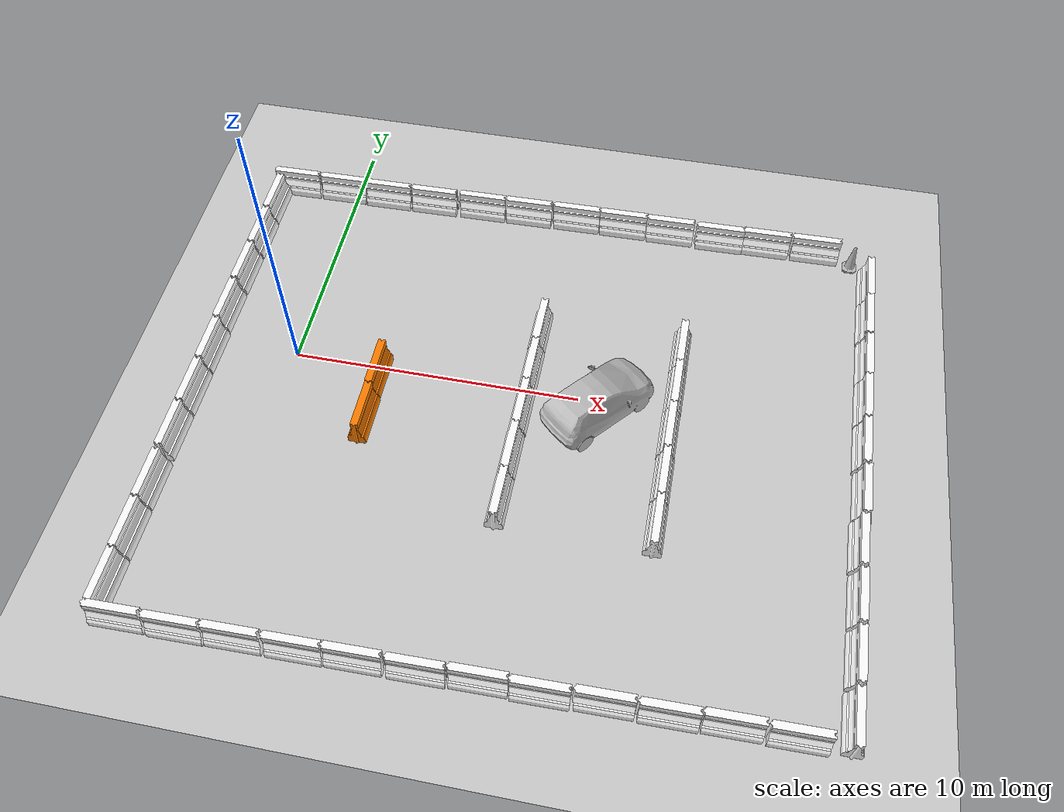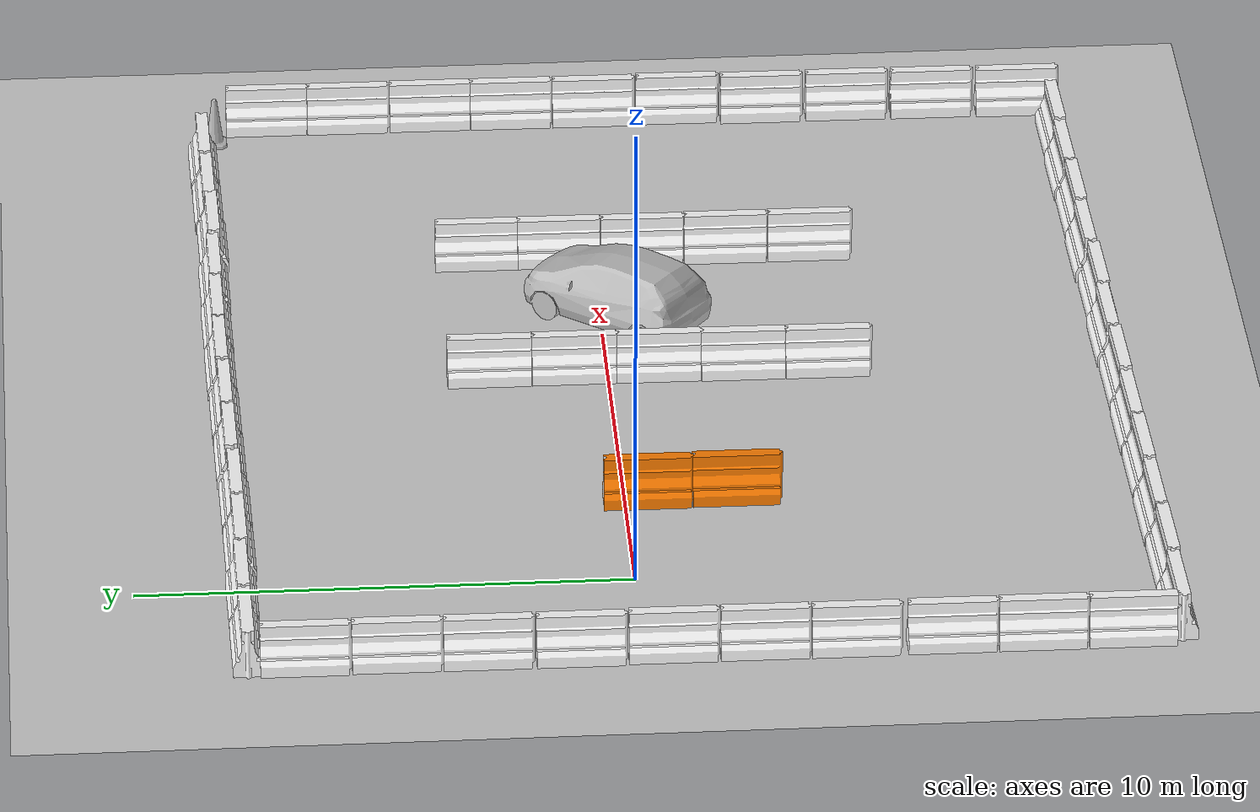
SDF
<sdf version="1.7">
 <world name="default">
  <light name="sun" type="directional">
   <pose>0 0 10 0 -0 0</pose>
   <diffuse>0.8 0.8 0.8 1</diffuse>
   <specular>0.2 0.2 0.2 1</specular>
   <attenuation>
    <range>1000</range>
    <constant>0.9</constant>
    <linear>0.01</linear>
    <quadratic>0.001</quadratic>
   </attenuation>
   <direction>-0.5 0.1 -0.9</direction>
   <spot><inner_angle>0</inner_angle><outer_angle>0</outer_angle><falloff>0</falloff></spot>
  </light>
  <model name="ground_plane">
   <static>1</static>
   <link name="link">
    <collision name="collision">
     <geometry><plane><normal>0 0 1</normal><size>100 100</size></plane></geometry>
     <surface>
      <contact><collide_bitmask>65535</collide_bitmask></contact>
      <friction><ode><mu>100</mu><mu2>50</mu2></ode></friction>
     </surface>
    </collision>
    <visual name="visual">
     <cast_shadows>0</cast_shadows>
     <geometry><plane><normal>0 0 1</normal><size>100 100</size></plane></geometry>
     <material>
      <script><uri>file://media/materials/scripts/gazebo.material</uri><name>Gazebo/Grey</name></script>
     </material>
    </visual>
   </link>
  </model>
  <gravity>0 0 -9.8</gravity>
  <magnetic_field>6e-06 2.3e-05 -4.2e-05</magnetic_field>
  <atmosphere type="adiabatic"/>
  <physics type="ode">
   <max_step_size>0.001</max_step_size>
   <real_time_factor>1</real_time_factor>
   <real_time_update_rate>1000</real_time_update_rate>
  </physics>
  <scene><ambient>0.4 0.4 0.4 1</ambient><background>0.7 0.7 0.7 1</background><shadows>1</shadows></scene>
  <spherical_coordinates>
   <surface_model>EARTH_WGS84</surface_model>
   <latitude_deg>0</latitude_deg>
   <longitude_deg>0</longitude_deg>
   <elevation>0</elevation>
   <heading_deg>0</heading_deg>
  </spherical_coordinates>
  <model name="drc_practice_white_jersey_barrier">
   <static>1</static>
   <link name="link">
    <visual name="visual">
     <geometry>
      <mesh><uri>model://drc_practice_white_jersey_barrier/meshes/jersey_barrier.dae</uri></mesh>
     </geometry>
    </visual>
    <collision name="collision">
     <geometry>
      <mesh><uri>model://drc_practice_white_jersey_barrier/meshes/jersey_barrier.dae</uri></mesh>
     </geometry>
    </collision>
   </link>
   <pose>-2.96918 3.11788 0 0 -0 0</pose>
  </model>
  <model name="drc_practice_white_jersey_barrier_clone">
   <static>1</static>
   <link name="link">
    <visual name="visual">
     <geometry>
      <mesh><uri>model://drc_practice_white_jersey_barrier/meshes/jersey_barrier.dae</uri></mesh>
     </geometry>
    </visual>
    <collision name="collision">
     <geometry>
      <mesh><uri>model://drc_practice_white_jersey_barrier/meshes/jersey_barrier.dae</uri></mesh>
     </geometry>
    </collision>
   </link>
   <pose>-2.97786 1.28953 0 0 -0 0</pose>
  </model>
  <model name="drc_practice_white_jersey_barrier_clone_0">
   <static>1</static>
   <link name="link">
    <visual name="visual">
     <geometry>
      <mesh><uri>model://drc_practice_white_jersey_barrier/meshes/jersey_barrier.dae</uri></mesh>
     </geometry>
    </visual>
    <collision name="collision">
     <geometry>
      <mesh><uri>model://drc_practice_white_jersey_barrier/meshes/jersey_barrier.dae</uri></mesh>
     </geometry>
    </collision>
   </link>
   <pose>-2.94831 -0.526407 0 0 -0 0</pose>
  </model>
  <model name="drc_practice_white_jersey_barrier_clone_1">
   <static>1</static>
   <link name="link">
    <visual name="visual">
     <geometry>
      <mesh><uri>model://drc_practice_white_jersey_barrier/meshes/jersey_barrier.dae</uri></mesh>
     </geometry>
    </visual>
    <collision name="collision">
     <geometry>
      <mesh><uri>model://drc_practice_white_jersey_barrier/meshes/jersey_barrier.dae</uri></mesh>
     </geometry>
    </collision>
   </link>
   <pose>-2.948 -2.33338 0 0 -0 0</pose>
  </model>
  <model name="drc_practice_white_jersey_barrier_clone_2">
   <static>1</static>
   <link name="link">
    <visual name="visual">
     <geometry>
      <mesh><uri>model://drc_practice_white_jersey_barrier/meshes/jersey_barrier.dae</uri></mesh>
     </geometry>
    </visual>
    <collision name="collision">
     <geometry>
      <mesh><uri>model://drc_practice_white_jersey_barrier/meshes/jersey_barrier.dae</uri></mesh>
     </geometry>
    </collision>
   </link>
   <pose>-2.95731 -4.12895 0 0 -0 0</pose>
  </model>
  <model name="drc_practice_white_jersey_barrier_clone_3">
   <static>1</static>
   <link name="link">
    <visual name="visual">
     <geometry>
      <mesh><uri>model://drc_practice_white_jersey_barrier/meshes/jersey_barrier.dae</uri></mesh>
     </geometry>
    </visual>
    <collision name="collision">
     <geometry>
      <mesh><uri>model://drc_practice_white_jersey_barrier/meshes/jersey_barrier.dae</uri></mesh>
     </geometry>
    </collision>
   </link>
   <pose>-2.94533 -6.03387 0 0 -0 0</pose>
  </model>
  <model name="drc_practice_white_jersey_barrier_clone_4">
   <static>1</static>
   <link name="link">
    <visual name="visual">
     <geometry>
      <mesh><uri>model://drc_practice_white_jersey_barrier/meshes/jersey_barrier.dae</uri></mesh>
     </geometry>
    </visual>
    <collision name="collision">
     <geometry>
      <mesh><uri>model://drc_practice_white_jersey_barrier/meshes/jersey_barrier.dae</uri></mesh>
     </geometry>
    </collision>
   </link>
   <pose>-2.94521 -7.82538 0 0 -0 0</pose>
  </model>
  <model name="drc_practice_white_jersey_barrier_clone_5">
   <static>1</static>
   <link name="link">
    <visual name="visual">
     <geometry>
      <mesh><uri>model://drc_practice_white_jersey_barrier/meshes/jersey_barrier.dae</uri></mesh>
     </geometry>
    </visual>
    <collision name="collision">
     <geometry>
      <mesh><uri>model://drc_practice_white_jersey_barrier/meshes/jersey_barrier.dae</uri></mesh>
     </geometry>
    </collision>
   </link>
   <pose>-2.94453 -9.61525 0 0 -0 0</pose>
  </model>
  <model name="drc_practice_white_jersey_barrier_clone_6">
   <static>1</static>
   <link name="link">
    <visual name="visual">
     <geometry>
      <mesh><uri>model://drc_practice_white_jersey_barrier/meshes/jersey_barrier.dae</uri></mesh>
     </geometry>
    </visual>
    <collision name="collision">
     <geometry>
      <mesh><uri>model://drc_practice_white_jersey_barrier/meshes/jersey_barrier.dae</uri></mesh>
     </geometry>
    </collision>
   </link>
   <pose>-2.95988 4.91477 0 0 -0 0</pose>
  </model>
  <model name="drc_practice_white_jersey_barrier_clone_7">
   <static>1</static>
   <link name="link">
    <visual name="visual">
     <geometry>
      <mesh><uri>model://drc_practice_white_jersey_barrier/meshes/jersey_barrier.dae</uri></mesh>
     </geometry>
    </visual>
    <collision name="collision">
     <geometry>
      <mesh><uri>model://drc_practice_white_jersey_barrier/meshes/jersey_barrier.dae</uri></mesh>
     </geometry>
    </collision>
   </link>
   <pose>-2.97922 6.71667 0 0 -0 0</pose>
  </model>
  <model name="drc_practice_white_jersey_barrier_clone_8">
   <static>1</static>
   <link name="link">
    <visual name="visual">
     <geometry>
      <mesh><uri>model://drc_practice_white_jersey_barrier/meshes/jersey_barrier.dae</uri></mesh>
     </geometry>
    </visual>
    <collision name="collision">
     <geometry>
      <mesh><uri>model://drc_practice_white_jersey_barrier/meshes/jersey_barrier.dae</uri></mesh>
     </geometry>
    </collision>
   </link>
   <pose>-2.35169 7.83258 0 0 0 -1.5496</pose>
  </model>
  <model name="drc_practice_white_jersey_barrier_clone_8_clone">
   <static>1</static>
   <link name="link">
    <visual name="visual">
     <geometry>
      <mesh><uri>model://drc_practice_white_jersey_barrier/meshes/jersey_barrier.dae</uri></mesh>
     </geometry>
    </visual>
    <collision name="collision">
     <geometry>
      <mesh><uri>model://drc_practice_white_jersey_barrier/meshes/jersey_barrier.dae</uri></mesh>
     </geometry>
    </collision>
   </link>
   <pose>-0.523214 7.85907 0 0 0 -1.5496</pose>
  </model>
  <model name="drc_practice_white_jersey_barrier_clone_8_clone_0">
   <static>1</static>
   <link name="link">
    <visual name="visual">
     <geometry>
      <mesh><uri>model://drc_practice_white_jersey_barrier/meshes/jersey_barrier.dae</uri></mesh>
     </geometry>
    </visual>
    <collision name="collision">
     <geometry>
      <mesh><uri>model://drc_practice_white_jersey_barrier/meshes/jersey_barrier.dae</uri></mesh>
     </geometry>
    </collision>
   </link>
   <pose>1.27629 7.85268 0 0 0 -1.5496</pose>
  </model>
  <model name="drc_practice_white_jersey_barrier_clone_8_clone_1">
   <static>1</static>
   <link name="link">
    <visual name="visual">
     <geometry>
      <mesh><uri>model://drc_practice_white_jersey_barrier/meshes/jersey_barrier.dae</uri></mesh>
     </geometry>
    </visual>
    <collision name="collision">
     <geometry>
      <mesh><uri>model://drc_practice_white_jersey_barrier/meshes/jersey_barrier.dae</uri></mesh>
     </geometry>
    </collision>
   </link>
   <pose>3.0918 7.88223 0 0 0 -1.5496</pose>
  </model>
  <model name="drc_practice_white_jersey_barrier_clone_8_clone_2">
   <static>1</static>
   <link name="link">
    <visual name="visual">
     <geometry>
      <mesh><uri>model://drc_practice_white_jersey_barrier/meshes/jersey_barrier.dae</uri></mesh>
     </geometry>
    </visual>
    <collision name="collision">
     <geometry>
      <mesh><uri>model://drc_practice_white_jersey_barrier/meshes/jersey_barrier.dae</uri></mesh>
     </geometry>
    </collision>
   </link>
   <pose>4.9922 7.93527 0 0 0 -1.5496</pose>
  </model>
  <model name="drc_practice_white_jersey_barrier_clone_8_clone_3">
   <static>1</static>
   <link name="link">
    <visual name="visual">
     <geometry>
      <mesh><uri>model://drc_practice_white_jersey_barrier/meshes/jersey_barrier.dae</uri></mesh>
     </geometry>
    </visual>
    <collision name="collision">
     <geometry>
      <mesh><uri>model://drc_practice_white_jersey_barrier/meshes/jersey_barrier.dae</uri></mesh>
     </geometry>
    </collision>
   </link>
   <pose>6.78944 7.9733 0 0 0 -1.5496</pose>
  </model>
  <model name="drc_practice_white_jersey_barrier_clone_8_clone_4">
   <static>1</static>
   <link name="link">
    <visual name="visual">
     <geometry>
      <mesh><uri>model://drc_practice_white_jersey_barrier/meshes/jersey_barrier.dae</uri></mesh>
     </geometry>
    </visual>
    <collision name="collision">
     <geometry>
      <mesh><uri>model://drc_practice_white_jersey_barrier/meshes/jersey_barrier.dae</uri></mesh>
     </geometry>
    </collision>
   </link>
   <pose>8.63651 8.01898 0 0 0 -1.5496</pose>
  </model>
  <model name="drc_practice_white_jersey_barrier_clone_8_clone_5">
   <static>1</static>
   <link name="link">
    <visual name="visual">
     <geometry>
      <mesh><uri>model://drc_practice_white_jersey_barrier/meshes/jersey_barrier.dae</uri></mesh>
     </geometry>
    </visual>
    <collision name="collision">
     <geometry>
      <mesh><uri>model://drc_practice_white_jersey_barrier/meshes/jersey_barrier.dae</uri></mesh>
     </geometry>
    </collision>
   </link>
   <pose>10.4216 8.03822 0 0 0 -1.5496</pose>
  </model>
  <model name="drc_practice_white_jersey_barrier_clone_8_clone_6">
   <static>1</static>
   <link name="link">
    <visual name="visual">
     <geometry>
      <mesh><uri>model://drc_practice_white_jersey_barrier/meshes/jersey_barrier.dae</uri></mesh>
     </geometry>
    </visual>
    <collision name="collision">
     <geometry>
      <mesh><uri>model://drc_practice_white_jersey_barrier/meshes/jersey_barrier.dae</uri></mesh>
     </geometry>
    </collision>
   </link>
   <pose>12.2099 8.0405 0 0 0 -1.5496</pose>
  </model>
  <model name="drc_practice_white_jersey_barrier_clone_8_clone_7">
   <static>1</static>
   <link name="link">
    <visual name="visual">
     <geometry>
      <mesh><uri>model://drc_practice_white_jersey_barrier/meshes/jersey_barrier.dae</uri></mesh>
     </geometry>
    </visual>
    <collision name="collision">
     <geometry>
      <mesh><uri>model://drc_practice_white_jersey_barrier/meshes/jersey_barrier.dae</uri></mesh>
     </geometry>
    </collision>
   </link>
   <pose>14.0858 8.02334 0 0 0 -1.5496</pose>
  </model>
  <model name="drc_practice_white_jersey_barrier_clone_8_clone_8">
   <static>1</static>
   <link name="link">
    <visual name="visual">
     <geometry>
      <mesh><uri>model://drc_practice_white_jersey_barrier/meshes/jersey_barrier.dae</uri></mesh>
     </geometry>
    </visual>
    <collision name="collision">
     <geometry>
      <mesh><uri>model://drc_practice_white_jersey_barrier/meshes/jersey_barrier.dae</uri></mesh>
     </geometry>
    </collision>
   </link>
   <pose>15.7992 8.0809 0 0 0 -1.5496</pose>
  </model>
  <model name="drc_practice_white_jersey_barrier_clone_8_clone_9">
   <static>1</static>
   <link name="link">
    <visual name="visual">
     <geometry>
      <mesh><uri>model://drc_practice_white_jersey_barrier/meshes/jersey_barrier.dae</uri></mesh>
     </geometry>
    </visual>
    <collision name="collision">
     <geometry>
      <mesh><uri>model://drc_practice_white_jersey_barrier/meshes/jersey_barrier.dae</uri></mesh>
     </geometry>
    </collision>
   </link>
   <pose>17.6333 8.11788 0 0 0 -1.5496</pose>
  </model>
  <model name="drc_practice_white_jersey_barrier_clone_8_clone_10">
   <static>1</static>
   <link name="link">
    <visual name="visual">
     <geometry>
      <mesh><uri>model://drc_practice_white_jersey_barrier/meshes/jersey_barrier.dae</uri></mesh>
     </geometry>
    </visual>
    <collision name="collision">
     <geometry>
      <mesh><uri>model://drc_practice_white_jersey_barrier/meshes/jersey_barrier.dae</uri></mesh>
     </geometry>
    </collision>
   </link>
   <pose>-2.16392 -10.6018 0 0 0 -1.5496</pose>
  </model>
  <model name="drc_practice_white_jersey_barrier_clone_8_clone_11">
   <static>1</static>
   <link name="link">
    <visual name="visual">
     <geometry>
      <mesh><uri>model://drc_practice_white_jersey_barrier/meshes/jersey_barrier.dae</uri></mesh>
     </geometry>
    </visual>
    <collision name="collision">
     <geometry>
      <mesh><uri>model://drc_practice_white_jersey_barrier/meshes/jersey_barrier.dae</uri></mesh>
     </geometry>
    </collision>
   </link>
   <pose>-0.320988 -10.6043 0 0 0 -1.5496</pose>
  </model>
  <model name="drc_practice_white_jersey_barrier_clone_8_clone_12">
   <static>1</static>
   <link name="link">
    <visual name="visual">
     <geometry>
      <mesh><uri>model://drc_practice_white_jersey_barrier/meshes/jersey_barrier.dae</uri></mesh>
     </geometry>
    </visual>
    <collision name="collision">
     <geometry>
      <mesh><uri>model://drc_practice_white_jersey_barrier/meshes/jersey_barrier.dae</uri></mesh>
     </geometry>
    </collision>
   </link>
   <pose>1.48268 -10.5625 0 0 0 -1.5496</pose>
  </model>
  <model name="drc_practice_white_jersey_barrier_clone_8_clone_13">
   <static>1</static>
   <link name="link">
    <visual name="visual">
     <geometry>
      <mesh><uri>model://drc_practice_white_jersey_barrier/meshes/jersey_barrier.dae</uri></mesh>
     </geometry>
    </visual>
    <collision name="collision">
     <geometry>
      <mesh><uri>model://drc_practice_white_jersey_barrier/meshes/jersey_barrier.dae</uri></mesh>
     </geometry>
    </collision>
   </link>
   <pose>3.33164 -10.5456 0 0 0 -1.5496</pose>
  </model>
  <model name="drc_practice_white_jersey_barrier_clone_8_clone_14">
   <static>1</static>
   <link name="link">
    <visual name="visual">
     <geometry>
      <mesh><uri>model://drc_practice_white_jersey_barrier/meshes/jersey_barrier.dae</uri></mesh>
     </geometry>
    </visual>
    <collision name="collision">
     <geometry>
      <mesh><uri>model://drc_practice_white_jersey_barrier/meshes/jersey_barrier.dae</uri></mesh>
     </geometry>
    </collision>
   </link>
   <pose>5.12676 -10.5043 0 0 0 -1.5496</pose>
  </model>
  <model name="drc_practice_white_jersey_barrier_clone_8_clone_15">
   <static>1</static>
   <link name="link">
    <visual name="visual">
     <geometry>
      <mesh><uri>model://drc_practice_white_jersey_barrier/meshes/jersey_barrier.dae</uri></mesh>
     </geometry>
    </visual>
    <collision name="collision">
     <geometry>
      <mesh><uri>model://drc_practice_white_jersey_barrier/meshes/jersey_barrier.dae</uri></mesh>
     </geometry>
    </collision>
   </link>
   <pose>6.99988 -10.4919 0 0 0 -1.5496</pose>
  </model>
  <model name="drc_practice_white_jersey_barrier_clone_8_clone_16">
   <static>1</static>
   <link name="link">
    <visual name="visual">
     <geometry>
      <mesh><uri>model://drc_practice_white_jersey_barrier/meshes/jersey_barrier.dae</uri></mesh>
     </geometry>
    </visual>
    <collision name="collision">
     <geometry>
      <mesh><uri>model://drc_practice_white_jersey_barrier/meshes/jersey_barrier.dae</uri></mesh>
     </geometry>
    </collision>
   </link>
   <pose>8.82752 -10.4329 0 0 0 -1.5496</pose>
  </model>
  <model name="drc_practice_white_jersey_barrier_clone_8_clone_17">
   <static>1</static>
   <link name="link">
    <visual name="visual">
     <geometry>
      <mesh><uri>model://drc_practice_white_jersey_barrier/meshes/jersey_barrier.dae</uri></mesh>
     </geometry>
    </visual>
    <collision name="collision">
     <geometry>
      <mesh><uri>model://drc_practice_white_jersey_barrier/meshes/jersey_barrier.dae</uri></mesh>
     </geometry>
    </collision>
   </link>
   <pose>10.6256 -10.4505 0 0 0 -1.5496</pose>
  </model>
  <model name="drc_practice_white_jersey_barrier_clone_8_clone_18">
   <static>1</static>
   <link name="link">
    <visual name="visual">
     <geometry>
      <mesh><uri>model://drc_practice_white_jersey_barrier/meshes/jersey_barrier.dae</uri></mesh>
     </geometry>
    </visual>
    <collision name="collision">
     <geometry>
      <mesh><uri>model://drc_practice_white_jersey_barrier/meshes/jersey_barrier.dae</uri></mesh>
     </geometry>
    </collision>
   </link>
   <pose>12.4699 -10.3813 0 0 0 -1.5496</pose>
  </model>
  <model name="drc_practice_white_jersey_barrier_clone_8_clone_19">
   <static>1</static>
   <link name="link">
    <visual name="visual">
     <geometry>
      <mesh><uri>model://drc_practice_white_jersey_barrier/meshes/jersey_barrier.dae</uri></mesh>
     </geometry>
    </visual>
    <collision name="collision">
     <geometry>
      <mesh><uri>model://drc_practice_white_jersey_barrier/meshes/jersey_barrier.dae</uri></mesh>
     </geometry>
    </collision>
   </link>
   <pose>14.2972 -10.382 0 0 0 -1.5496</pose>
  </model>
  <model name="drc_practice_white_jersey_barrier_clone_8_clone_20">
   <static>1</static>
   <link name="link">
    <visual name="visual">
     <geometry>
      <mesh><uri>model://drc_practice_white_jersey_barrier/meshes/jersey_barrier.dae</uri></mesh>
     </geometry>
    </visual>
    <collision name="collision">
     <geometry>
      <mesh><uri>model://drc_practice_white_jersey_barrier/meshes/jersey_barrier.dae</uri></mesh>
     </geometry>
    </collision>
   </link>
   <pose>16.097 -10.3285 0 0 0 -1.5496</pose>
  </model>
  <model name="drc_practice_white_jersey_barrier_clone_8_clone_21">
   <static>1</static>
   <link name="link">
    <visual name="visual">
     <geometry>
      <mesh><uri>model://drc_practice_white_jersey_barrier/meshes/jersey_barrier.dae</uri></mesh>
     </geometry>
    </visual>
    <collision name="collision">
     <geometry>
      <mesh><uri>model://drc_practice_white_jersey_barrier/meshes/jersey_barrier.dae</uri></mesh>
     </geometry>
    </collision>
   </link>
   <pose>17.9407 -10.3313 0 0 0 -1.5496</pose>
  </model>
  <model name="drc_practice_white_jersey_barrier_clone_5_clone">
   <static>1</static>
   <link name="link">
    <visual name="visual">
     <geometry>
      <mesh><uri>model://drc_practice_white_jersey_barrier/meshes/jersey_barrier.dae</uri></mesh>
     </geometry>
    </visual>
    <collision name="collision">
     <geometry>
      <mesh><uri>model://drc_practice_white_jersey_barrier/meshes/jersey_barrier.dae</uri></mesh>
     </geometry>
    </collision>
   </link>
   <pose>19.4495 -9.63155 0 0 -0 0</pose>
  </model>
  <model name="drc_practice_white_jersey_barrier_clone_5_clone_0">
   <static>1</static>
   <link name="link">
    <visual name="visual">
     <geometry>
      <mesh><uri>model://drc_practice_white_jersey_barrier/meshes/jersey_barrier.dae</uri></mesh>
     </geometry>
    </visual>
    <collision name="collision">
     <geometry>
      <mesh><uri>model://drc_practice_white_jersey_barrier/meshes/jersey_barrier.dae</uri></mesh>
     </geometry>
    </collision>
   </link>
   <pose>19.4843 -7.76067 0 0 -0 0</pose>
  </model>
  <model name="drc_practice_white_jersey_barrier_clone_5_clone_1">
   <static>1</static>
   <link name="link">
    <visual name="visual">
     <geometry>
      <mesh><uri>model://drc_practice_white_jersey_barrier/meshes/jersey_barrier.dae</uri></mesh>
     </geometry>
    </visual>
    <collision name="collision">
     <geometry>
      <mesh><uri>model://drc_practice_white_jersey_barrier/meshes/jersey_barrier.dae</uri></mesh>
     </geometry>
    </collision>
   </link>
   <pose>19.5038 -5.90386 0 0 -0 0</pose>
  </model>
  <model name="drc_practice_white_jersey_barrier_clone_5_clone_2">
   <static>1</static>
   <link name="link">
    <visual name="visual">
     <geometry>
      <mesh><uri>model://drc_practice_white_jersey_barrier/meshes/jersey_barrier.dae</uri></mesh>
     </geometry>
    </visual>
    <collision name="collision">
     <geometry>
      <mesh><uri>model://drc_practice_white_jersey_barrier/meshes/jersey_barrier.dae</uri></mesh>
     </geometry>
    </collision>
   </link>
   <pose>19.5012 -4.04349 0 0 -0 0</pose>
  </model>
  <model name="drc_practice_white_jersey_barrier_clone_5_clone_3">
   <static>1</static>
   <link name="link">
    <visual name="visual">
     <geometry>
      <mesh><uri>model://drc_practice_white_jersey_barrier/meshes/jersey_barrier.dae</uri></mesh>
     </geometry>
    </visual>
    <collision name="collision">
     <geometry>
      <mesh><uri>model://drc_practice_white_jersey_barrier/meshes/jersey_barrier.dae</uri></mesh>
     </geometry>
    </collision>
   </link>
   <pose>19.5726 -2.21749 0 0 -0 0</pose>
  </model>
  <model name="drc_practice_white_jersey_barrier_clone_5_clone_4">
   <static>1</static>
   <link name="link">
    <visual name="visual">
     <geometry>
      <mesh><uri>model://drc_practice_white_jersey_barrier/meshes/jersey_barrier.dae</uri></mesh>
     </geometry>
    </visual>
    <collision name="collision">
     <geometry>
      <mesh><uri>model://drc_practice_white_jersey_barrier/meshes/jersey_barrier.dae</uri></mesh>
     </geometry>
    </collision>
   </link>
   <pose>19.5509 -0.382974 0 0 -0 0</pose>
  </model>
  <model name="drc_practice_white_jersey_barrier_clone_5_clone_5">
   <static>1</static>
   <link name="link">
    <visual name="visual">
     <geometry>
      <mesh><uri>model://drc_practice_white_jersey_barrier/meshes/jersey_barrier.dae</uri></mesh>
     </geometry>
    </visual>
    <collision name="collision">
     <geometry>
      <mesh><uri>model://drc_practice_white_jersey_barrier/meshes/jersey_barrier.dae</uri></mesh>
     </geometry>
    </collision>
   </link>
   <pose>19.5627 1.40214 0 0 -0 0</pose>
  </model>
  <model name="drc_practice_white_jersey_barrier_clone_5_clone_6">
   <static>1</static>
   <link name="link">
    <visual name="visual">
     <geometry>
      <mesh><uri>model://drc_practice_white_jersey_barrier/meshes/jersey_barrier.dae</uri></mesh>
     </geometry>
    </visual>
    <collision name="collision">
     <geometry>
      <mesh><uri>model://drc_practice_white_jersey_barrier/meshes/jersey_barrier.dae</uri></mesh>
     </geometry>
    </collision>
   </link>
   <pose>19.5766 3.15623 0 0 -0 0</pose>
  </model>
  <model name="drc_practice_white_jersey_barrier_clone_5_clone_7">
   <static>1</static>
   <link name="link">
    <visual name="visual">
     <geometry>
      <mesh><uri>model://drc_practice_white_jersey_barrier/meshes/jersey_barrier.dae</uri></mesh>
     </geometry>
    </visual>
    <collision name="collision">
     <geometry>
      <mesh><uri>model://drc_practice_white_jersey_barrier/meshes/jersey_barrier.dae</uri></mesh>
     </geometry>
    </collision>
   </link>
   <pose>19.5683 4.94921 0 0 -0 0</pose>
  </model>
  <model name="drc_practice_white_jersey_barrier_clone_5_clone_8">
   <static>1</static>
   <link name="link">
    <visual name="visual">
     <geometry>
      <mesh><uri>model://drc_practice_white_jersey_barrier/meshes/jersey_barrier.dae</uri></mesh>
     </geometry>
    </visual>
    <collision name="collision">
     <geometry>
      <mesh><uri>model://drc_practice_white_jersey_barrier/meshes/jersey_barrier.dae</uri></mesh>
     </geometry>
    </collision>
   </link>
   <pose>19.5841 6.70885 0 0 -0 0</pose>
  </model>
  <model name="Construction Cone">
   <link name="link">
    <collision name="collision">
     <geometry>
      <mesh><scale>10 10 10</scale><uri>model://construction_cone/meshes/construction_cone.dae</uri></mesh>
     </geometry>
    </collision>
    <visual name="visual">
     <geometry>
      <mesh><scale>10 10 10</scale><uri>model://construction_cone/meshes/construction_cone.dae</uri></mesh>
     </geometry>
    </visual>
    <inertial>
     <inertia><ixx>1</ixx><ixy>0</ixy><ixz>0</ixz><iyy>1</iyy><iyz>0</iyz><izz>1</izz></inertia>
     <mass>1</mass>
    </inertial>
   </link>
   <pose>18.9894 7.84077 -0 0 -0 0</pose>
  </model>
  <model name="drc_practice_organge_jersey_barrier">
   <static>1</static>
   <link name="link">
    <visual name="visual">
     <geometry>
      <mesh><uri>model://drc_practice_orange_jersey_barrier/meshes/jersey_barrier.dae</uri></mesh>
     </geometry>
    </visual>
    <collision name="collision">
     <geometry>
      <mesh><uri>model://drc_practice_orange_jersey_barrier/meshes/jersey_barrier.dae</uri></mesh>
     </geometry>
    </collision>
   </link>
   <pose>3.04343 -0.439765 0 0 -0 0</pose>
  </model>
  <model name="drc_practice_organge_jersey_barrier_0">
   <static>1</static>
   <link name="link">
    <visual name="visual">
     <geometry>
      <mesh><uri>model://drc_practice_orange_jersey_barrier/meshes/jersey_barrier.dae</uri></mesh>
     </geometry>
    </visual>
    <collision name="collision">
     <geometry>
      <mesh><uri>model://drc_practice_orange_jersey_barrier/meshes/jersey_barrier.dae</uri></mesh>
     </geometry>
    </collision>
   </link>
   <pose>3.06101 -2.23853 0 0 -0 0</pose>
  </model>
  <model name="drc_practice_white_jersey_barrier_clone_5_clone_8_clone">
   <static>1</static>
   <link name="link">
    <visual name="visual">
     <geometry>
      <mesh><uri>model://drc_practice_white_jersey_barrier/meshes/jersey_barrier.dae</uri></mesh>
     </geometry>
    </visual>
    <collision name="collision">
     <geometry>
      <mesh><uri>model://drc_practice_white_jersey_barrier/meshes/jersey_barrier.dae</uri></mesh>
     </geometry>
    </collision>
   </link>
   <pose>13.2251 0.734763 0 0 -0 0</pose>
  </model>
  <model name="drc_practice_white_jersey_barrier_clone_5_clone_8_clone_0">
   <static>1</static>
   <link name="link">
    <visual name="visual">
     <geometry>
      <mesh><uri>model://drc_practice_white_jersey_barrier/meshes/jersey_barrier.dae</uri></mesh>
     </geometry>
    </visual>
    <collision name="collision">
     <geometry>
      <mesh><uri>model://drc_practice_white_jersey_barrier/meshes/jersey_barrier.dae</uri></mesh>
     </geometry>
    </collision>
   </link>
   <pose>13.2066 -1.02161 0 0 -0 0</pose>
  </model>
  <model name="drc_practice_white_jersey_barrier_clone_5_clone_8_clone_1">
   <static>1</static>
   <link name="link">
    <visual name="visual">
     <geometry>
      <mesh><uri>model://drc_practice_white_jersey_barrier/meshes/jersey_barrier.dae</uri></mesh>
     </geometry>
    </visual>
    <collision name="collision">
     <geometry>
      <mesh><uri>model://drc_practice_white_jersey_barrier/meshes/jersey_barrier.dae</uri></mesh>
     </geometry>
    </collision>
   </link>
   <pose>13.2196 -2.79112 0 0 -0 0</pose>
  </model>
  <model name="drc_practice_white_jersey_barrier_clone_5_clone_8_clone_2">
   <static>1</static>
   <link name="link">
    <visual name="visual">
     <geometry>
      <mesh><uri>model://drc_practice_white_jersey_barrier/meshes/jersey_barrier.dae</uri></mesh>
     </geometry>
    </visual>
    <collision name="collision">
     <geometry>
      <mesh><uri>model://drc_practice_white_jersey_barrier/meshes/jersey_barrier.dae</uri></mesh>
     </geometry>
    </collision>
   </link>
   <pose>13.216 -4.56455 0 0 -0 0</pose>
  </model>
  <model name="drc_practice_white_jersey_barrier_clone_5_clone_8_clone_3">
   <static>1</static>
   <link name="link">
    <visual name="visual">
     <geometry>
      <mesh><uri>model://drc_practice_white_jersey_barrier/meshes/jersey_barrier.dae</uri></mesh>
     </geometry>
    </visual>
    <collision name="collision">
     <geometry>
      <mesh><uri>model://drc_practice_white_jersey_barrier/meshes/jersey_barrier.dae</uri></mesh>
     </geometry>
    </collision>
   </link>
   <pose>13.2274 2.4771 0 0 -0 0</pose>
  </model>
  <model name="hatchback">
   <static>1</static>
   <link name="link">
    <collision name="collision">
     <pose>0 0 0 0 -0 1.5708</pose>
     <geometry>
      <mesh><scale>0.0254 0.0254 0.0254</scale><uri>model://hatchback/meshes/hatchback.obj</uri></mesh>
     </geometry>
    </collision>
    <visual name="visual">
     <pose>0 0 0 0 -0 1.5708</pose>
     <geometry>
      <mesh><scale>0.0254 0.0254 0.0254</scale><uri>model://hatchback/meshes/hatchback.obj</uri></mesh>
     </geometry>
    </visual>
   </link>
   <pose>10.49 -0.598166 0 0 -0 0.867977</pose>
  </model>
  <model name="drc_practice_white_jersey_barrier_clone_5_clone_8_clone_8_clone">
   <static>1</static>
   <link name="link">
    <visual name="visual">
     <geometry>
      <mesh><uri>model://drc_practice_white_jersey_barrier/meshes/jersey_barrier.dae</uri></mesh>
     </geometry>
    </visual>
    <collision name="collision">
     <geometry>
      <mesh><uri>model://drc_practice_white_jersey_barrier/meshes/jersey_barrier.dae</uri></mesh>
     </geometry>
    </collision>
   </link>
   <pose>8.22443 -1.03044 0 0 -0 0</pose>
  </model>
  <model name="drc_practice_white_jersey_barrier_clone_5_clone_8_clone_8_clone_clone">
   <static>1</static>
   <link name="link">
    <visual name="visual">
     <geometry>
      <mesh><uri>model://drc_practice_white_jersey_barrier/meshes/jersey_barrier.dae</uri></mesh>
     </geometry>
    </visual>
    <collision name="collision">
     <geometry>
      <mesh><uri>model://drc_practice_white_jersey_barrier/meshes/jersey_barrier.dae</uri></mesh>
     </geometry>
    </collision>
   </link>
   <pose>8.23218 0.722503 0 0 -0 0</pose>
  </model>
  <model name="drc_practice_white_jersey_barrier_clone_5_clone_8_clone_8_clone_clone_0">
   <static>1</static>
   <link name="link">
    <visual name="visual">
     <geometry>
      <mesh><uri>model://drc_practice_white_jersey_barrier/meshes/jersey_barrier.dae</uri></mesh>
     </geometry>
    </visual>
    <collision name="collision">
     <geometry>
      <mesh><uri>model://drc_practice_white_jersey_barrier/meshes/jersey_barrier.dae</uri></mesh>
     </geometry>
    </collision>
   </link>
   <pose>8.22963 2.47533 0 0 -0 0</pose>
  </model>
  <model name="drc_practice_white_jersey_barrier_clone_5_clone_8_clone_8_clone_clone_1">
   <static>1</static>
   <link name="link">
    <visual name="visual">
     <geometry>
      <mesh><uri>model://drc_practice_white_jersey_barrier/meshes/jersey_barrier.dae</uri></mesh>
     </geometry>
    </visual>
    <collision name="collision">
     <geometry>
      <mesh><uri>model://drc_practice_white_jersey_barrier/meshes/jersey_barrier.dae</uri></mesh>
     </geometry>
    </collision>
   </link>
   <pose>8.19806 -2.7823 0 0 -0 0</pose>
  </model>
  <model name="drc_practice_white_jersey_barrier_clone_5_clone_8_clone_8_clone_clone_2">
   <static>1</static>
   <link name="link">
    <visual name="visual">
     <geometry>
      <mesh><uri>model://drc_practice_white_jersey_barrier/meshes/jersey_barrier.dae</uri></mesh>
     </geometry>
    </visual>
    <collision name="collision">
     <geometry>
      <mesh><uri>model://drc_practice_white_jersey_barrier/meshes/jersey_barrier.dae</uri></mesh>
     </geometry>
    </collision>
   </link>
   <pose>8.18589 -4.5346 0 0 -0 0</pose>
  </model>
 </world>
</sdf>
